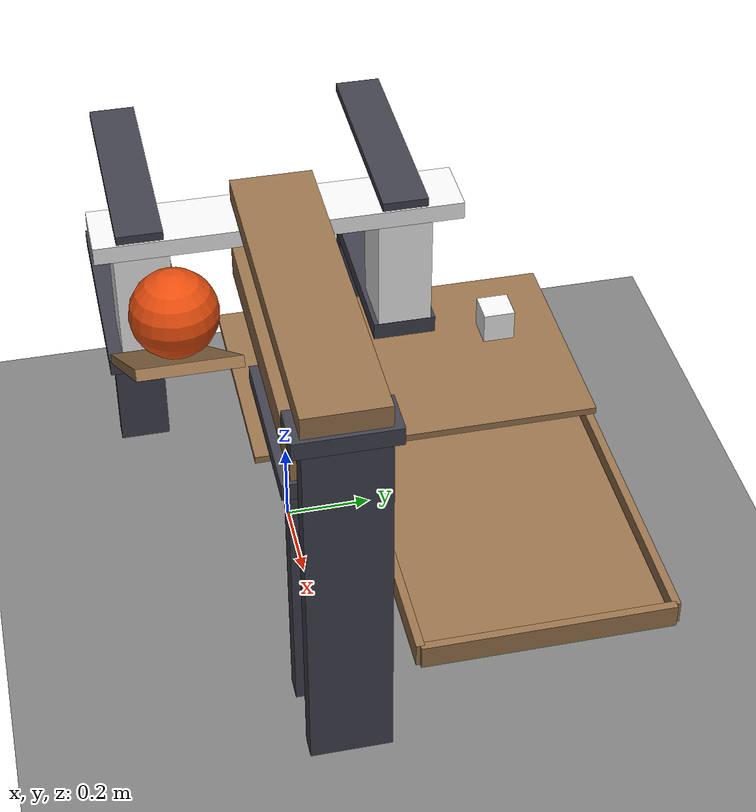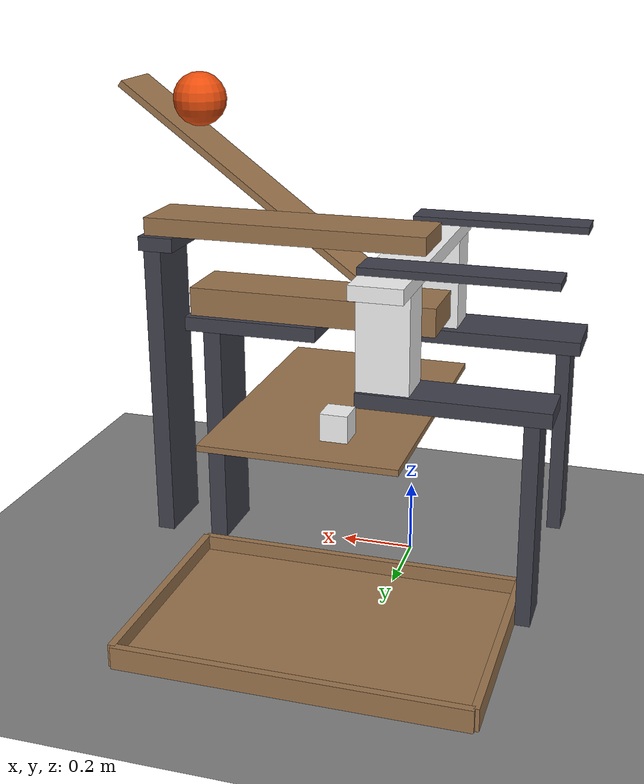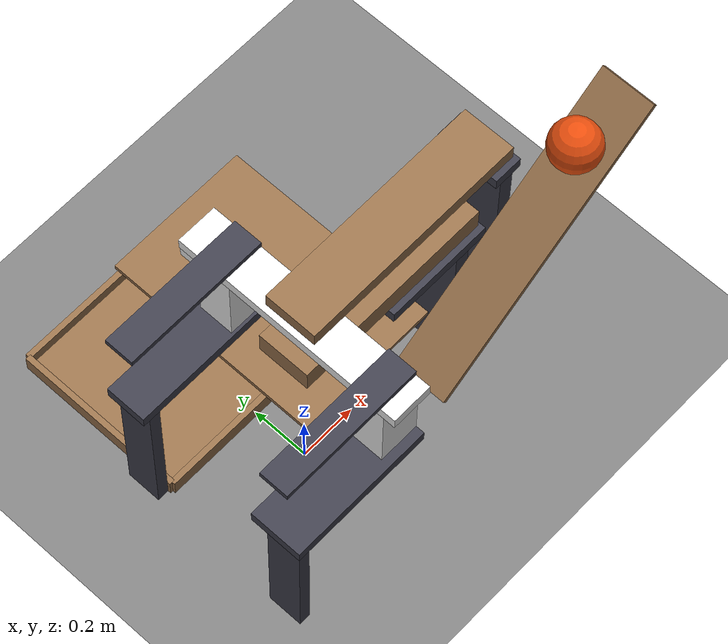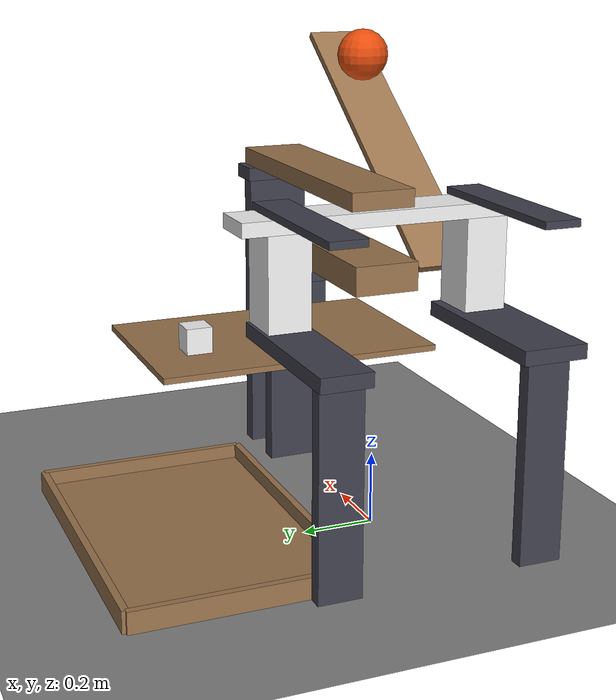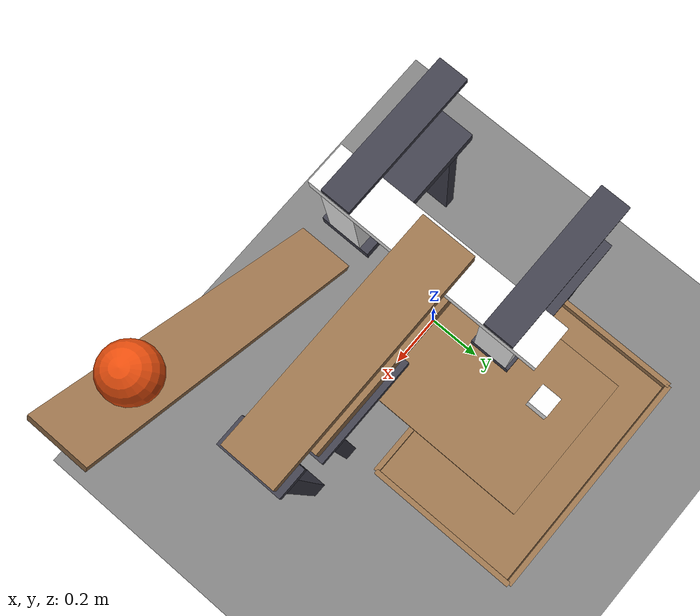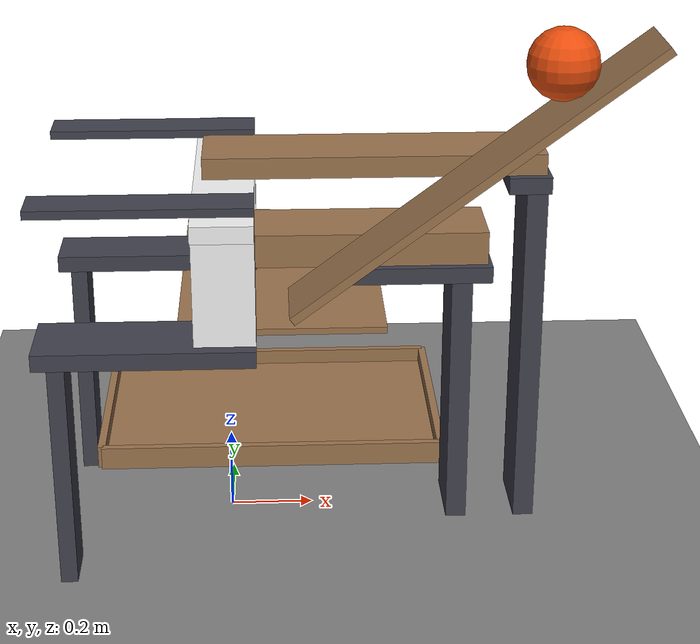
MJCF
<mujoco model="guided_key_and_falling_bridges">
  <compiler angle="radian"/>
  <option timestep="0.002"/>
  <worldbody>
    <geom name="floor" type="plane" size="6 6 0.1" friction="0.8 0.005 0.002"/>
    <body name="ramp">
      <geom name="ramp" type="box" pos="0.55 -0.3 0.97" size="0.5 0.09 0.01" euler="0 -0.643501 0" friction="0.6 0.001 0.0002" rgba="0.6 0.45 0.3 1"/>
    </body>
    <body name="ball" pos="0.736 -0.3 1.222">
      <freejoint/>
      <geom name="ball" type="sphere" pos="0 0 0" size="0.08" mass="0.6" condim="6" friction="0.6 0.001 0.0002" solref="0.01 1" rgba="0.9 0.3 0.05 1"/>
    </body>
    <body name="key right track">
      <geom name="key right track" type="box" pos="-0.18 -0.3 0.58" size="0.25 0.09 0.02" friction="0.005 0.005 0.0001" rgba="0.25 0.25 0.3 1"/>
    </body>
    <body name="key left track">
      <geom name="key left track" type="box" pos="-0.18 0.27 0.58" size="0.25 0.07 0.02" friction="0.005 0.005 0.0001" rgba="0.25 0.25 0.3 1"/>
    </body>
    <body name="key right track leg">
      <geom name="key right track leg" type="box" pos="-0.38 -0.3 0.28" size="0.02 0.06 0.28" rgba="0.25 0.25 0.3 1"/>
    </body>
    <body name="key left track leg">
      <geom name="key left track leg" type="box" pos="-0.38 0.27 0.28" size="0.02 0.06 0.28" rgba="0.25 0.25 0.3 1"/>
    </body>
    <body name="key right upper guide">
      <geom name="key right upper guide" type="box" pos="-0.18 -0.3 0.913" size="0.25 0.05 0.01" friction="0.005 0.005 0.0001" rgba="0.25 0.25 0.3 1"/>
    </body>
    <body name="key left upper guide">
      <geom name="key left upper guide" type="box" pos="-0.18 0.27 0.913" size="0.25 0.05 0.01" friction="0.005 0.005 0.0001" rgba="0.25 0.25 0.3 1"/>
    </body>
    <body name="key" pos="0 -0.3 0.73">
      <freejoint/>
      <geom name="key" type="box" pos="0 0 0" size="0.07 0.06 0.13" mass="0.05" friction="0.005 0.005 0.0001" solref="0.01 1" rgba="0.95 0.95 0.95 1"/>
      <geom name="key beam" type="box" pos="0 0.3 0.15" size="0.07 0.4 0.02" mass="0.08" friction="0.005 0.005 0.0001" solref="0.01 1" rgba="0.95 0.95 0.95 1"/>
      <geom name="key left foot" type="box" pos="0 0.57 0" size="0.07 0.06 0.13" mass="0.05" friction="0.005 0.005 0.0001" solref="0.01 1" rgba="0.95 0.95 0.95 1"/>
    </body>
    <body name="bridge1 rear ledge">
      <geom name="bridge1 rear ledge" type="box" pos="0.71 0 0.88" size="0.05 0.11 0.02" friction="0.4 0.005 0.0001" rgba="0.25 0.25 0.3 1"/>
    </body>
    <body name="bridge1 rear post">
      <geom name="bridge1 rear post" type="box" pos="0.73 0 0.43" size="0.025 0.09 0.43" rgba="0.25 0.25 0.3 1"/>
    </body>
    <body name="bridge2 shelf">
      <geom name="bridge2 shelf" type="box" pos="0.44 0 0.66" size="0.19 0.11 0.02" friction="0.3 0.005 0.0001" rgba="0.25 0.25 0.3 1"/>
    </body>
    <body name="bridge2 shelf post">
      <geom name="bridge2 shelf post" type="box" pos="0.56 0 0.32" size="0.025 0.09 0.32" rgba="0.25 0.25 0.3 1"/>
    </body>
    <body name="bin">
      <geom name="bin_base" type="box" pos="0.1 0.5 0.01" size="0.45 0.3 0.01" friction="1 0.01 0.005" solref="0.01 1" rgba="0.6 0.45 0.3 1"/>
      <geom name="bin_near_wall" type="box" pos="-0.35 0.5 0.03" size="0.01 0.3 0.03" friction="1 0.01 0.005" solref="0.01 1" rgba="0.6 0.45 0.3 1"/>
      <geom name="bin_far_wall" type="box" pos="0.55 0.5 0.03" size="0.01 0.3 0.03" friction="1 0.01 0.005" solref="0.01 1" rgba="0.6 0.45 0.3 1"/>
      <geom name="bin_left_wall" type="box" pos="0.1 0.8 0.03" size="0.45 0.01 0.03" friction="1 0.01 0.005" solref="0.01 1" rgba="0.6 0.45 0.3 1"/>
      <geom name="bin_right_wall" type="box" pos="0.1 0.2 0.03" size="0.45 0.01 0.03" friction="1 0.01 0.005" solref="0.01 1" rgba="0.6 0.45 0.3 1"/>
    </body>
    <body name="flap" pos="0.38 0.25 0.53">
      <joint name="flap_hinge" type="hinge" pos="0 0 0" axis="0 1 0" limited="true" range="-1.13446 0" stiffness="0.5" springref="0.698132" damping="0.015" armature="0.001"/>
      <geom name="flap" type="box" pos="-0.25 0 0" size="0.25 0.375 0.008" mass="0.08" friction="0.2 0.005 0.0001" solref="0.01 1" rgba="0.6 0.45 0.3 1"/>
    </body>
    <body name="payload" pos="0.07 0.48 0.573">
      <freejoint/>
      <geom name="payload" type="box" pos="0 0 0" size="0.035 0.035 0.035" mass="0.035" friction="0.25 0.005 0.0001" solref="0.01 1" rgba="0.95 0.95 0.95 1"/>
    </body>
    <body name="bridge2" pos="0.27 0 0.72">
      <freejoint/>
      <geom name="bridge2" type="box" pos="0 0 0" size="0.35 0.09 0.04" mass="0.65" friction="0.3 0.005 0.0001" solref="0.01 1" rgba="0.6 0.45 0.3 1"/>
    </body>
    <body name="bridge1" pos="0.35 0 0.925">
      <freejoint/>
      <geom name="bridge1" type="box" pos="0 0 0" size="0.4 0.09 0.025" mass="1.8" friction="0.01 0.005 0.0001" solref="0.01 1" rgba="0.6 0.45 0.3 1"/>
    </body>
  </worldbody>
  <keyframe>
    <key name="start" qpos="0.736 -0.3 1.222 1 0 0 0 0 -0.3 0.73 1 0 0 0 0 0.07 0.48 0.573 1 0 0 0 0.27 0 0.72 1 0 0 0 0.35 0 0.925 1 0 0 0" qvel="0 0 0 0 0 0 0 0 0 0 0 0 0 0 0 0 0 0 0 0 0 0 0 0 0 0 0 0 0 0 0"/>
  </keyframe>
</mujoco>
